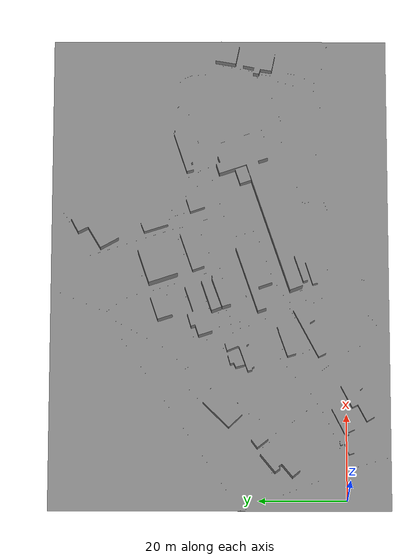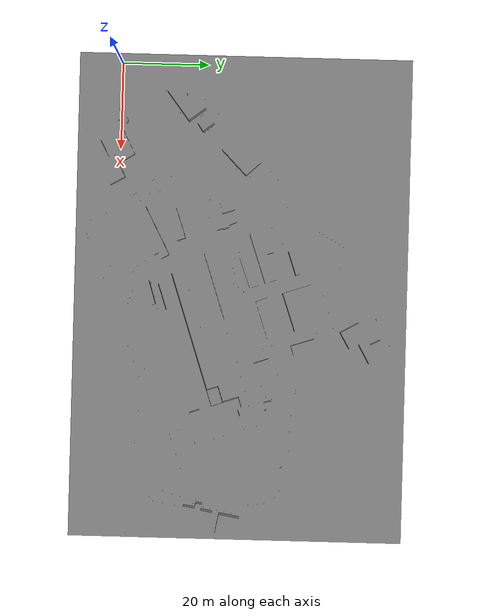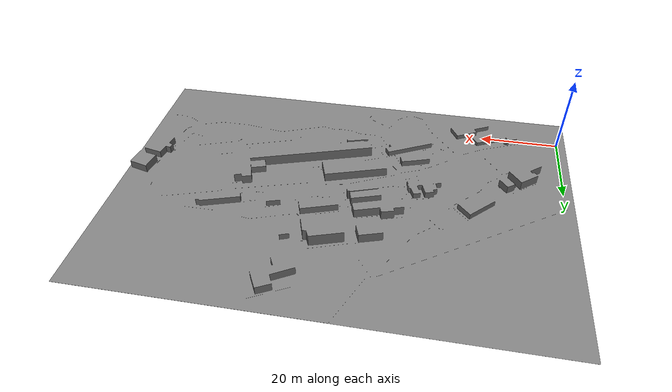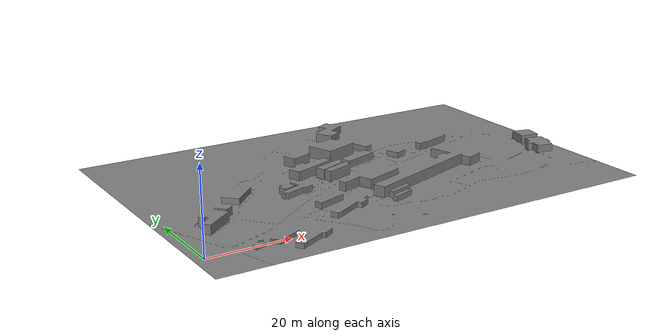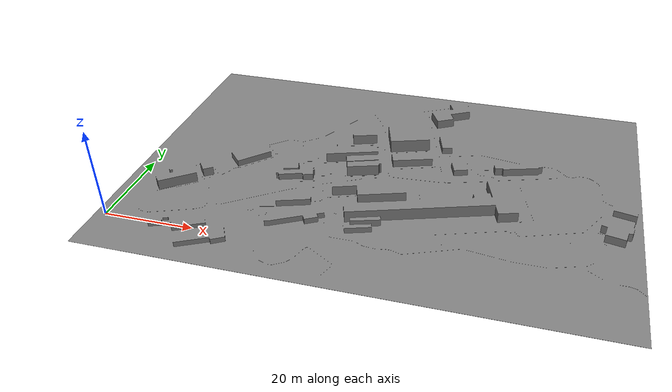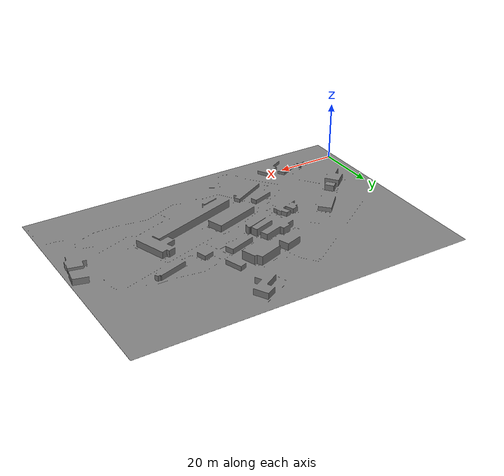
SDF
<?xml version="1.0"?>
<sdf version="1.6">
  <world name="kimm_city_world">
    <physics type="ode">
      <max_step_size>0.001</max_step_size>
      <real_time_factor>1</real_time_factor>
      <real_time_update_rate>1000</real_time_update_rate>
    </physics>

    <gravity>0 0 -9.81</gravity>

    <scene>
      <ambient>0.4 0.4 0.4 1</ambient>
      <background>0.7 0.7 0.7 1</background>
      <shadows>true</shadows>
    </scene>

    <include>
      <uri>model://sun</uri>
    </include>

    <model name="ground_plane">
      <static>true</static>
      <link name="link">
        <collision name="collision">
          <geometry>
            <plane>
              <normal>0 0 1</normal>
              <size>100 100</size>
            </plane>
          </geometry>
          <surface>
            <friction>
              <ode>
                <mu>100</mu>
                <mu2>50</mu2>
              </ode>
            </friction>
          </surface>
        </collision>
      </link>
    </model>

    <include>
      <uri>model://kimm_city</uri>
      <pose>-80 -10 0 0 0 0</pose>
    </include>
  </world>
</sdf>

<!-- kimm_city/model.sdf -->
<sdf version="1.6">
  <model name="kimm_city">
    <static>true</static>
    <link name="link">
      <collision name="collision">
        <geometry>
          <mesh>
            <uri>file:///home/KIMM_FSD/KIMM_CITY_VER1.stl</uri>
            <scale>0.0001 0.0001 0.0001</scale>
          </mesh>
        </geometry>
      </collision>
      <visual name="visual">
        <geometry>
          <mesh>
            <uri>file:///home/KIMM_FSD/KIMM_CITY_VER1.stl</uri>
            <scale>0.0001 0.0001 0.0001</scale>
          </mesh>
        </geometry>
        <material>
          <ambient>0.5 0.5 0.5 1</ambient>
          <diffuse>0.5 0.5 0.5 1</diffuse>
          <specular>0.1 0.1 0.1 1</specular>
        </material>
      </visual>
    </link>
  </model>
</sdf>
